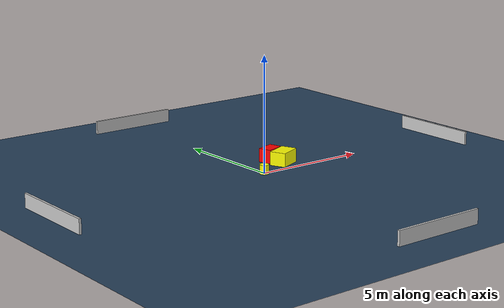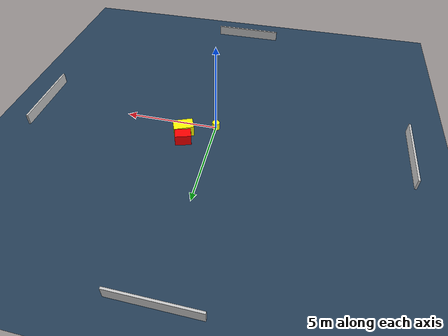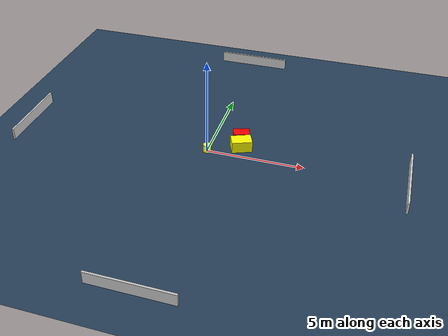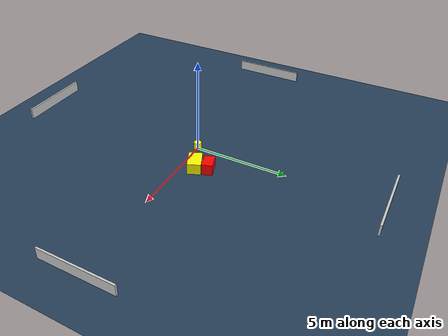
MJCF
<?xml version="1.0" ?>
<mujoco model="generated_environment">
  <option timestep="0.01" integrator="RK4" cone="elliptic"/>
  <default>
    <geom density="1"/>
  </default>
  <asset>
    <texture builtin="gradient" height="3072" name="skybox" rgb1="0.3 0.5 0.7" rgb2="0 0 0" type="skybox" width="512"/>
    <texture builtin="checker" height="300" name="groundplane" rgb1="0.2 0.3 0.4" rgb2="0.1 0.2 0.3" type="2d" width="300"/>
    <material name="groundplane" reflectance="0.2" texrepeat="5 5" texture="groundplane"/>
  </asset>
  <worldbody>
    <light dir="0 0 -1" directional="true" pos="0 0 1.5"/>
    <geom condim="3" friction="0.5 0.005 0.001" material="groundplane" name="floor" pos="0 0 0" size="0 0 0.05" type="plane"/>
    <body name="walls">
      <geom name="wall_1" condim="4" pos="-10.0 0.0 0.3" rgba="0.800000011920929 0.800000011920929 0.800000011920929 1.0" size="0.05 2.0 0.3" type="box"/>
      <geom name="wall_2" condim="4" pos="10.0 0.0 0.3" rgba="0.800000011920929 0.800000011920929 0.800000011920929 1.0" size="0.05 2.0 0.3" type="box"/>
      <geom name="wall_3" condim="4" pos="0.0 -10.0 0.3" rgba="0.800000011920929 0.800000011920929 0.800000011920929 1.0" size="2.0 0.05 0.3" type="box"/>
      <geom name="wall_4" condim="4" pos="0.0 10.0 0.3" rgba="0.800000011920929 0.800000011920929 0.800000011920929 1.0" size="2.0 0.05 0.3" type="box"/>
    </body>
    <body name="robot">
      <joint name="joint_x" type="slide" pos="0 0 0" axis="1 0 0"/>
      <joint name="joint_y" type="slide" pos="0 0 0" axis="0 1 0"/>
      <geom name="robot" type="cylinder" pos="0.0 0.0 0.2" size="0.2 0.2 0.0" mass="5.0" friction="1.0 0.005 0.0001" condim="4" rgba="1.0 1.0 0.0 1.0"/>
    </body>
    <body name="obstacle_1_movable">
      <geom name="obstacle_1_movable" condim="4" pos="1.609312821208816 0.7138927053614507 0.3" euler="0 0 203.04424144505137" friction="0.0 0.005 0.001" rgba="1.0 1.0 0.0 1.0" size="0.5241707366542654 0.3511068037490135 0.3" type="box" mass="0.1"/>
      <joint type="free"/>
    </body>
    <body name="obstacle_2_static">
      <geom name="obstacle_2_static" condim="4" pos="1.430865925744526 1.3906278433862513 0.3" euler="0 0 197.23765303723223" friction="0.0 0.005 0.001" rgba="1.0 0.0 0.0 1.0" size="0.41781034169413434 0.2820556696693079 0.3" type="box"/>
    </body>
  </worldbody>
  <actuator>
    <motor name="actuator_x" joint="joint_x" gear="1" ctrlrange="-1 1"/>
    <motor name="actuator_y" joint="joint_y" gear="1" ctrlrange="-1 1"/>
  </actuator>
</mujoco>
